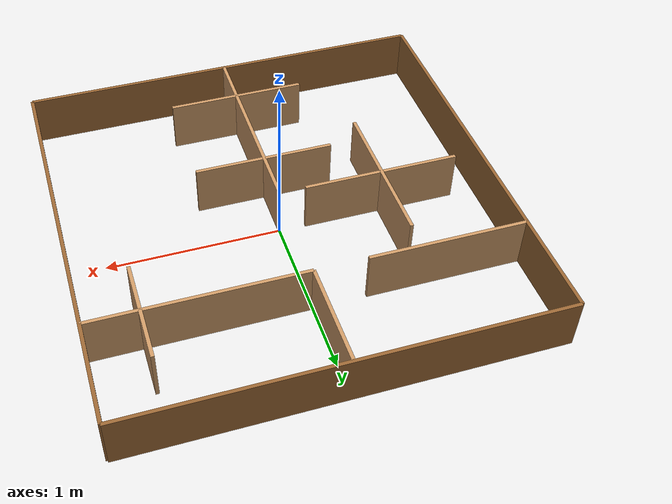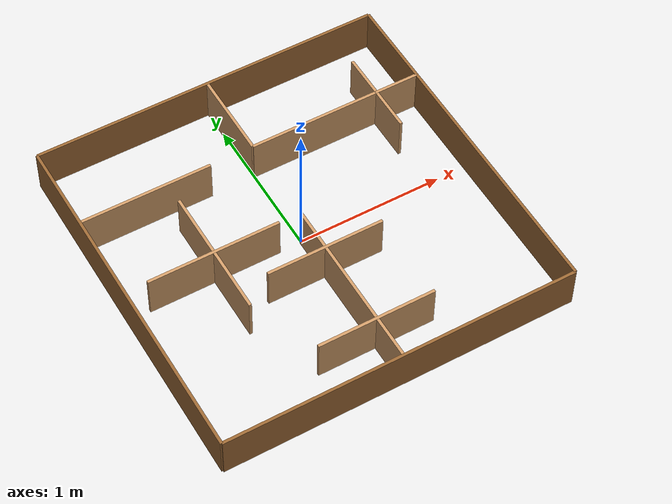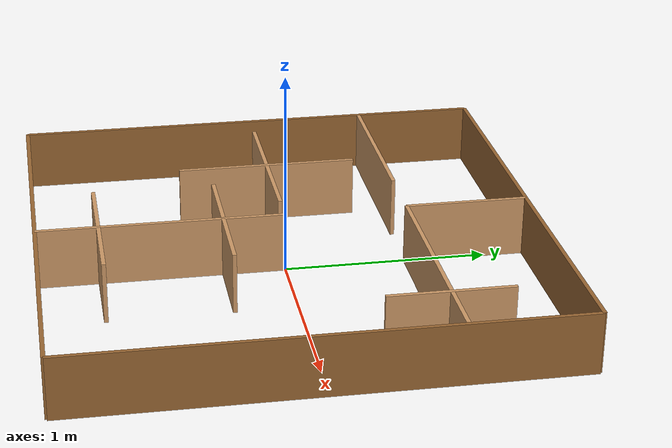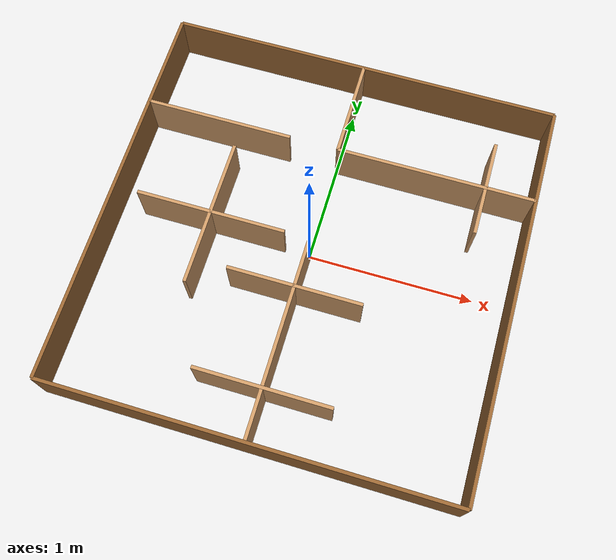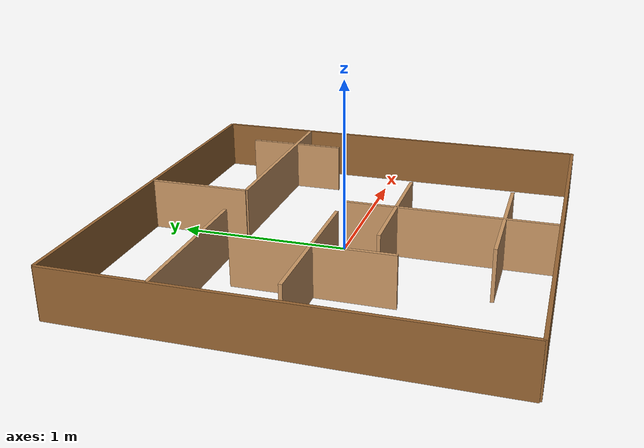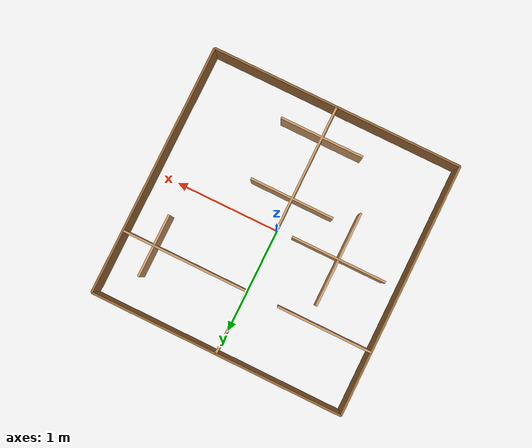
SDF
<?xml version="1.0" ?>
<sdf version="1.7">
  <world name="maze_world">

    <!-- Ground plane -->
    <link name="ground">
      <pose>0 0 0 0 0 0</pose>
      <collision name="ground_col">
        <geometry>
          <plane>
            <normal>0 0 1</normal>
            <size>20 20</size>
          </plane>
        </geometry>
      </collision>
      <visual name="ground_vis">
        <geometry>
          <plane>
            <normal>0 0 1</normal>
            <size>20 20</size>
          </plane>
        </geometry>
        <material>
          <ambient>0.3 0.3 0.3 1</ambient>
          <diffuse>0.4 0.4 0.4 1</diffuse>
        </material>
      </visual>
    </link>

    <model name="wood_maze">
      <static>true</static>

      <!-- ========== OUTER SQUARE ========== -->

      <!-- Bottom (y = -1.2) -->
      <link name="outer_bottom">
        <pose>0 -1.2 0.15 0 0 0</pose>
        <collision name="col">
          <geometry><box><size>2.4 0.02 0.30</size></box></geometry>
        </collision>
        <visual name="vis">
          <geometry><box><size>2.4 0.02 0.30</size></box></geometry>
          <material><ambient>0.6 0.4 0.2 1</ambient></material>
        </visual>
      </link>

      <!-- Top (y = 1.2) -->
      <link name="outer_top">
        <pose>0 1.2 0.15 0 0 0</pose>
        <collision name="col">
          <geometry><box><size>2.4 0.02 0.30</size></box></geometry>
        </collision>
        <visual name="vis">
          <geometry><box><size>2.4 0.02 0.30</size></box></geometry>
          <material><ambient>0.6 0.4 0.2 1</ambient></material>
        </visual>
      </link>

      <!-- Left (x = -1.2) -->
      <link name="outer_left">
        <pose>-1.2 0 0.15 0 0 0</pose>
        <collision name="col">
          <geometry><box><size>0.02 2.4 0.30</size></box></geometry>
        </collision>
        <visual name="vis">
          <geometry><box><size>0.02 2.4 0.30</size></box></geometry>
          <material><ambient>0.6 0.4 0.2 1</ambient></material>
        </visual>
      </link>

      <!-- Right (x = 1.2) -->
      <link name="outer_right">
        <pose>1.2 0 0.15 0 0 0</pose>
        <collision name="col">
          <geometry><box><size>0.02 2.4 0.30</size></box></geometry>
        </collision>
        <visual name="vis">
          <geometry><box><size>0.02 2.4 0.30</size></box></geometry>
          <material><ambient>0.6 0.4 0.2 1</ambient></material>
        </visual>
      </link>

      <link name="top_left_short_h">
        <pose>-0.75 0.6 0.15 0 0 0</pose>
        <collision name="col">
          <geometry><box><size>0.9 0.02 0.30</size></box></geometry>
        </collision>
        <visual name="vis">
          <geometry><box><size>0.9 0.02 0.30</size></box></geometry>
          <material><ambient>0.8 0.6 0.4 1</ambient></material>
        </visual>
      </link>

      <!-- Vertical from roof (y = 1.2) down to the corridor line (y = 0.6) -->
      <link name="top_center_vertical">
        <pose>0.0 0.9 0.15 0 0 0</pose>
        <collision name="col">
          <geometry><box><size>0.02 0.6 0.30</size></box></geometry>
        </collision>
        <visual name="vis">
          <geometry><box><size>0.02 0.6 0.30</size></box></geometry>
          <material><ambient>0.8 0.6 0.4 1</ambient></material>
        </visual>
      </link>

      <!-- Long horizontal from center to right wall at same y=0.6 -->
      <link name="top_right_long_h">
        <!-- x from 0.0 to 1.2 (length 1.2) -->
        <pose>0.6 0.6 0.15 0 0 0</pose>
        <collision name="col">
          <geometry><box><size>1.2 0.02 0.30</size></box></geometry>
        </collision>
        <visual name="vis">
          <geometry><box><size>1.2 0.02 0.30</size></box></geometry>
          <material><ambient>0.8 0.6 0.4 1</ambient></material>
        </visual>
      </link>

      <link name="top_right_cross_v">
        <pose>0.9 0.6 0.15 0 0 0</pose>
        <collision name="col">
          <!-- from y = 0.3 to 0.9 -->
          <geometry><box><size>0.02 0.6 0.30</size></box></geometry>
        </collision>
        <visual name="vis">
          <geometry><box><size>0.02 0.6 0.30</size></box></geometry>
          <material><ambient>0.8 0.6 0.4 1</ambient></material>
        </visual>
      </link>
      <!-- (its horizontal arm is just part of the existing long corridor) -->

      <!-- Vertical part -->
      <link name="mid_left_cross_v">
        <!-- center at (-0.6, 0.0), span 0.9 (from -0.45 to 0.45) -->
        <pose>-0.6 0.0 0.15 0 0 0</pose>
        <collision name="col">
          <geometry><box><size>0.02 0.9 0.30</size></box></geometry>
        </collision>
        <visual name="vis">
          <geometry><box><size>0.02 0.9 0.30</size></box></geometry>
          <material><ambient>0.8 0.6 0.4 1</ambient></material>
        </visual>
      </link>

      <!-- Horizontal part -->
      <link name="mid_left_cross_h">
        <!-- center at (-0.6, 0.0), span 0.9 (from -1.05 to -0.15) -->
        <pose>-0.6 0.0 0.15 0 0 0</pose>
        <collision name="col">
          <geometry><box><size>0.9 0.02 0.30</size></box></geometry>
        </collision>
        <visual name="vis">
          <geometry><box><size>0.9 0.02 0.30</size></box></geometry>
          <material><ambient>0.8 0.6 0.4 1</ambient></material>
        </visual>
      </link>

      <!-- Vertical from bottom (y = -1.2) up to y = 0.0 -->
      <link name="bottom_vertical">
        <pose>0.0 -0.6 0.15 0 0 0</pose>
        <collision name="col">
          <geometry><box><size>0.02 1.2 0.30</size></box></geometry>
        </collision>
        <visual name="vis">
          <geometry><box><size>0.02 1.2 0.30</size></box></geometry>
          <material><ambient>0.8 0.6 0.4 1</ambient></material>
        </visual>
      </link>

      <!-- Lower horizontal (mid of lower segment) at y = -0.9 -->
      <link name="bottom_horizontal_low">
        <!-- short bar, centered at (0,-0.9) -->
        <pose>0.0 -0.9 0.15 0 0 0</pose>
        <collision name="col">
          <geometry><box><size>0.8 0.02 0.30</size></box></geometry>
        </collision>
        <visual name="vis">
          <geometry><box><size>0.8 0.02 0.30</size></box></geometry>
          <material><ambient>0.8 0.6 0.4 1</ambient></material>
        </visual>
      </link>

      <!-- Upper horizontal at y = -0.3 -->
      <link name="bottom_horizontal_high">
        <pose>0.0 -0.3 0.15 0 0 0</pose>
        <collision name="col">
          <geometry><box><size>0.8 0.02 0.30</size></box></geometry>
        </collision>
        <visual name="vis">
          <geometry><box><size>0.8 0.02 0.30</size></box></geometry>
          <material><ambient>0.8 0.6 0.4 1</ambient></material>
        </visual>
      </link>

    </model>

  </world>
</sdf>
